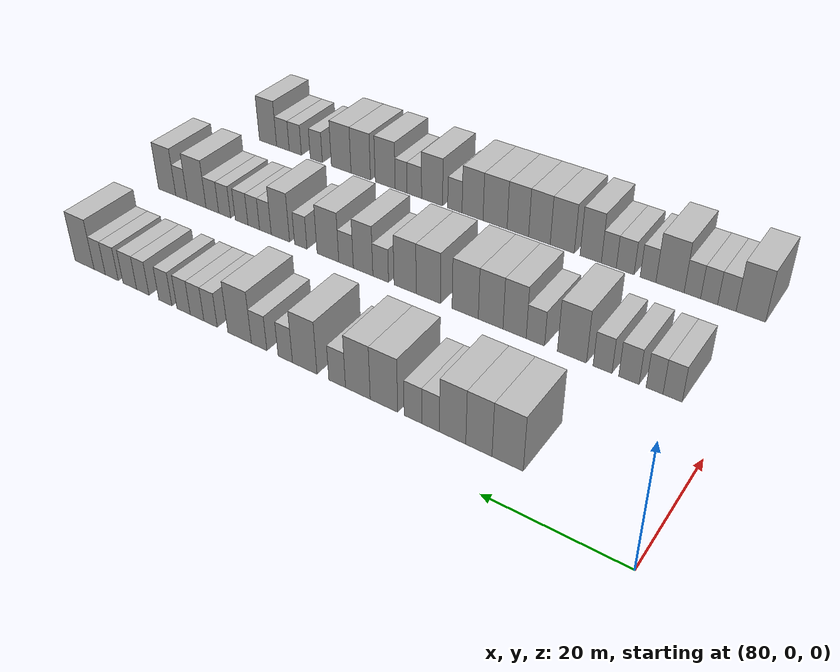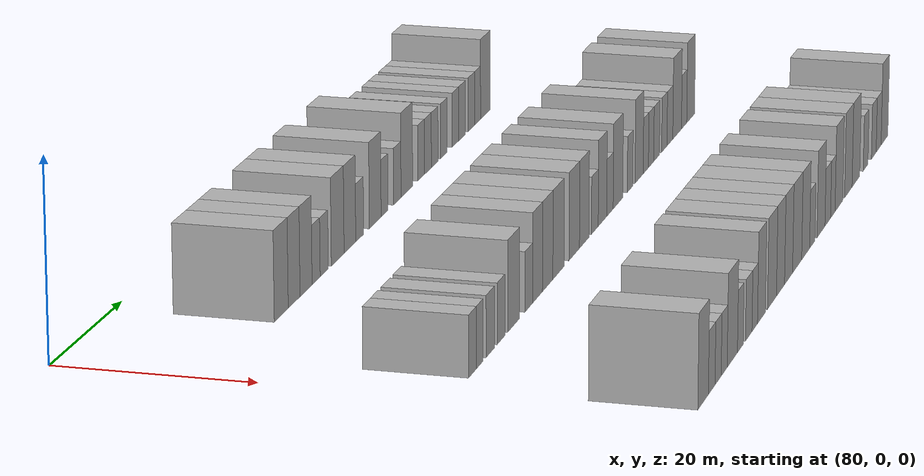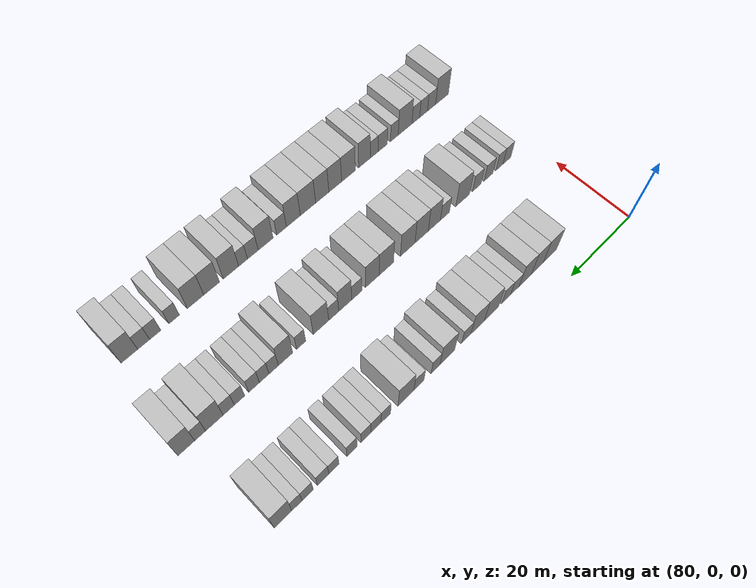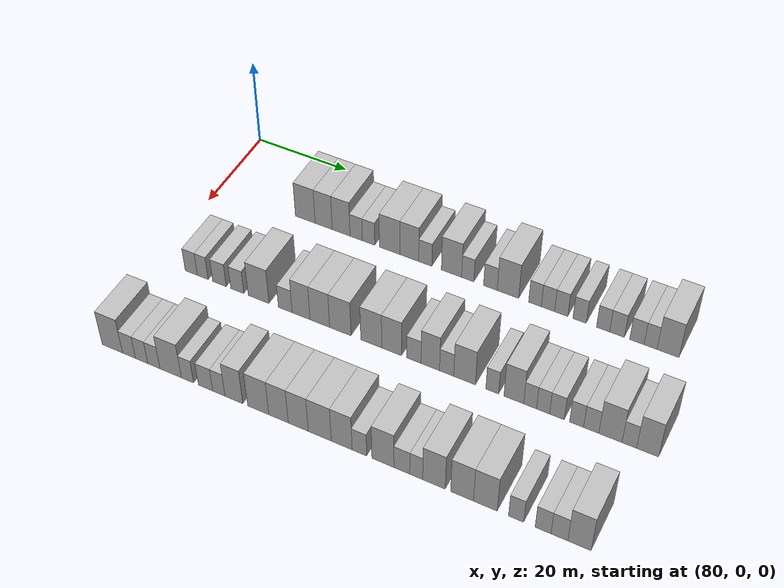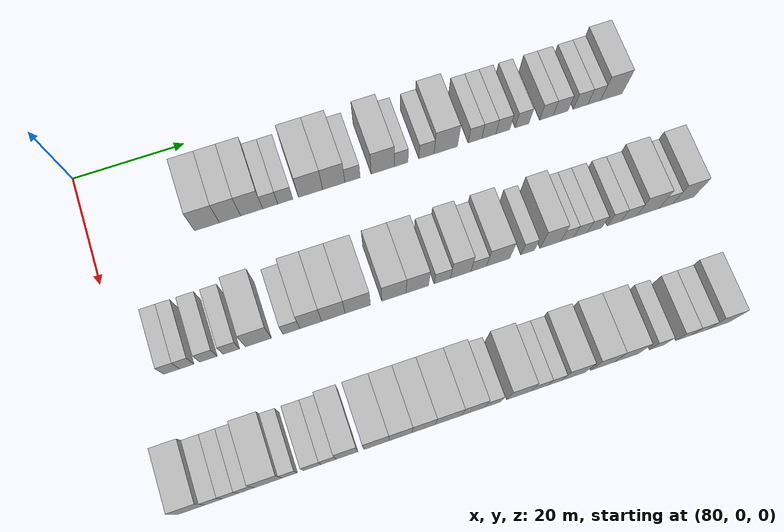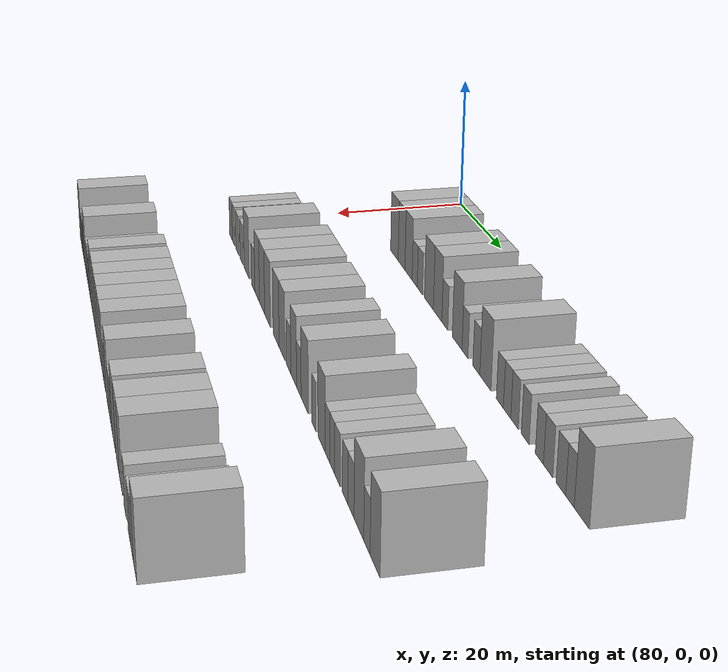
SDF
<sdf version="1.6">
 <world name="default">
  <model name="building_667">
   <static>1</static>
   <pose>91.0000 19.6866 0 0.000000 0.000000 0.000000</pose>
   <link name="link">
    <pose>0 0 4.50 0 0 0</pose>
    <collision name="collision"><geometry><box><size>10.0000 4.4033 9.0000</size></box></geometry></collision>
    <visual name="visual">
     <cast_shadows>0</cast_shadows>
     <geometry><box><size>10.0000 4.4033 9.0000</size></box></geometry>
     <material>
      <script>
       <uri>model://HANNAS_wall/materials/scripts</uri>
       <uri>model://HANNAS_wall/materials/textures</uri>
       <name>vrc/HANNAS_wall</name>
      </script>
     </material>
    </visual>
   </link>
  </model>
  <model name="building_668">
   <static>1</static>
   <pose>91.0000 23.7858 0 0.000000 0.000000 0.000000</pose>
   <link name="link">
    <pose>0 0 4.50 0 0 0</pose>
    <collision name="collision"><geometry><box><size>10.0000 3.7952 9.0000</size></box></geometry></collision>
    <visual name="visual">
     <cast_shadows>0</cast_shadows>
     <geometry><box><size>10.0000 3.7952 9.0000</size></box></geometry>
     <material>
      <script>
       <uri>model://HANNAS_wall/materials/scripts</uri>
       <uri>model://HANNAS_wall/materials/textures</uri>
       <name>vrc/HANNAS_wall</name>
      </script>
     </material>
    </visual>
   </link>
  </model>
  <model name="building_669">
   <static>1</static>
   <pose>91.0000 27.6432 0 0.000000 0.000000 0.000000</pose>
   <link name="link">
    <pose>0 0 4.50 0 0 0</pose>
    <collision name="collision"><geometry><box><size>10.0000 3.9196 9.0000</size></box></geometry></collision>
    <visual name="visual">
     <cast_shadows>0</cast_shadows>
     <geometry><box><size>10.0000 3.9196 9.0000</size></box></geometry>
     <material>
      <script>
       <uri>model://HANNAS_wall/materials/scripts</uri>
       <uri>model://HANNAS_wall/materials/textures</uri>
       <name>vrc/HANNAS_wall</name>
      </script>
     </material>
    </visual>
   </link>
  </model>
  <model name="building_670">
   <static>1</static>
   <pose>91.0000 30.9434 0 0.000000 0.000000 0.000000</pose>
   <link name="link">
    <pose>0 0 3.00 0 0 0</pose>
    <collision name="collision"><geometry><box><size>10.0000 2.6806 6.0000</size></box></geometry></collision>
    <visual name="visual">
     <cast_shadows>0</cast_shadows>
     <geometry><box><size>10.0000 2.6806 6.0000</size></box></geometry>
     <material>
      <script>
       <uri>model://HANNAS_wall/materials/scripts</uri>
       <uri>model://HANNAS_wall/materials/textures</uri>
       <name>vrc/HANNAS_wall</name>
      </script>
     </material>
    </visual>
   </link>
  </model>
  <model name="building_671">
   <static>1</static>
   <pose>91.0000 33.6394 0 0.000000 0.000000 0.000000</pose>
   <link name="link">
    <pose>0 0 3.00 0 0 0</pose>
    <collision name="collision"><geometry><box><size>10.0000 2.7114 6.0000</size></box></geometry></collision>
    <visual name="visual">
     <cast_shadows>0</cast_shadows>
     <geometry><box><size>10.0000 2.7114 6.0000</size></box></geometry>
     <material>
      <script>
       <uri>model://HANNAS_wall/materials/scripts</uri>
       <uri>model://HANNAS_wall/materials/textures</uri>
       <name>vrc/HANNAS_wall</name>
      </script>
     </material>
    </visual>
   </link>
  </model>
  <model name="building_672">
   <static>1</static>
   <pose>91.0000 38.1758 0 0.000000 0.000000 0.000000</pose>
   <link name="link">
    <pose>0 0 4.50 0 0 0</pose>
    <collision name="collision"><geometry><box><size>10.0000 4.3613 9.0000</size></box></geometry></collision>
    <visual name="visual">
     <cast_shadows>0</cast_shadows>
     <geometry><box><size>10.0000 4.3613 9.0000</size></box></geometry>
     <material>
      <script>
       <uri>model://HANNAS_wall/materials/scripts</uri>
       <uri>model://HANNAS_wall/materials/textures</uri>
       <name>vrc/HANNAS_wall</name>
      </script>
     </material>
    </visual>
   </link>
  </model>
  <model name="building_673">
   <static>1</static>
   <pose>91.0000 42.3746 0 0.000000 0.000000 0.000000</pose>
   <link name="link">
    <pose>0 0 4.50 0 0 0</pose>
    <collision name="collision"><geometry><box><size>10.0000 4.0362 9.0000</size></box></geometry></collision>
    <visual name="visual">
     <cast_shadows>0</cast_shadows>
     <geometry><box><size>10.0000 4.0362 9.0000</size></box></geometry>
     <material>
      <script>
       <uri>model://HANNAS_wall/materials/scripts</uri>
       <uri>model://HANNAS_wall/materials/textures</uri>
       <name>vrc/HANNAS_wall</name>
      </script>
     </material>
    </visual>
   </link>
  </model>
  <model name="building_674">
   <static>1</static>
   <pose>91.0000 45.7812 0 0.000000 0.000000 0.000000</pose>
   <link name="link">
    <pose>0 0 3.00 0 0 0</pose>
    <collision name="collision"><geometry><box><size>10.0000 2.7770 6.0000</size></box></geometry></collision>
    <visual name="visual">
     <cast_shadows>0</cast_shadows>
     <geometry><box><size>10.0000 2.7770 6.0000</size></box></geometry>
     <material>
      <script>
       <uri>model://HANNAS_wall/materials/scripts</uri>
       <uri>model://HANNAS_wall/materials/textures</uri>
       <name>vrc/HANNAS_wall</name>
      </script>
     </material>
    </visual>
   </link>
  </model>
  <model name="building_675">
   <static>1</static>
   <pose>91.0000 51.2825 0 0.000000 0.000000 0.000000</pose>
   <link name="link">
    <pose>0 0 4.50 0 0 0</pose>
    <collision name="collision"><geometry><box><size>10.0000 4.2257 9.0000</size></box></geometry></collision>
    <visual name="visual">
     <cast_shadows>0</cast_shadows>
     <geometry><box><size>10.0000 4.2257 9.0000</size></box></geometry>
     <material>
      <script>
       <uri>model://HANNAS_wall/materials/scripts</uri>
       <uri>model://HANNAS_wall/materials/textures</uri>
       <name>vrc/HANNAS_wall</name>
      </script>
     </material>
    </visual>
   </link>
  </model>
  <model name="building_676">
   <static>1</static>
   <pose>91.0000 54.6594 0 0.000000 0.000000 0.000000</pose>
   <link name="link">
    <pose>0 0 3.00 0 0 0</pose>
    <collision name="collision"><geometry><box><size>10.0000 2.5281 6.0000</size></box></geometry></collision>
    <visual name="visual">
     <cast_shadows>0</cast_shadows>
     <geometry><box><size>10.0000 2.5281 6.0000</size></box></geometry>
     <material>
      <script>
       <uri>model://HANNAS_wall/materials/scripts</uri>
       <uri>model://HANNAS_wall/materials/textures</uri>
       <name>vrc/HANNAS_wall</name>
      </script>
     </material>
    </visual>
   </link>
  </model>
  <model name="building_677">
   <static>1</static>
   <pose>91.0000 59.3194 0 0.000000 0.000000 0.000000</pose>
   <link name="link">
    <pose>0 0 3.00 0 0 0</pose>
    <collision name="collision"><geometry><box><size>10.0000 2.7919 6.0000</size></box></geometry></collision>
    <visual name="visual">
     <cast_shadows>0</cast_shadows>
     <geometry><box><size>10.0000 2.7919 6.0000</size></box></geometry>
     <material>
      <script>
       <uri>model://HANNAS_wall/materials/scripts</uri>
       <uri>model://HANNAS_wall/materials/textures</uri>
       <name>vrc/HANNAS_wall</name>
      </script>
     </material>
    </visual>
   </link>
  </model>
  <model name="building_678">
   <static>1</static>
   <pose>91.0000 62.8949 0 0.000000 0.000000 0.000000</pose>
   <link name="link">
    <pose>0 0 4.50 0 0 0</pose>
    <collision name="collision"><geometry><box><size>10.0000 4.3589 9.0000</size></box></geometry></collision>
    <visual name="visual">
     <cast_shadows>0</cast_shadows>
     <geometry><box><size>10.0000 4.3589 9.0000</size></box></geometry>
     <material>
      <script>
       <uri>model://HANNAS_wall/materials/scripts</uri>
       <uri>model://HANNAS_wall/materials/textures</uri>
       <name>vrc/HANNAS_wall</name>
      </script>
     </material>
    </visual>
   </link>
  </model>
  <model name="building_679">
   <static>1</static>
   <pose>91.0000 68.3487 0 0.000000 0.000000 0.000000</pose>
   <link name="link">
    <pose>0 0 3.00 0 0 0</pose>
    <collision name="collision"><geometry><box><size>10.0000 2.5487 6.0000</size></box></geometry></collision>
    <visual name="visual">
     <cast_shadows>0</cast_shadows>
     <geometry><box><size>10.0000 2.5487 6.0000</size></box></geometry>
     <material>
      <script>
       <uri>model://HANNAS_wall/materials/scripts</uri>
       <uri>model://HANNAS_wall/materials/textures</uri>
       <name>vrc/HANNAS_wall</name>
      </script>
     </material>
    </visual>
   </link>
  </model>
  <model name="building_680">
   <static>1</static>
   <pose>91.0000 70.9417 0 0.000000 0.000000 0.000000</pose>
   <link name="link">
    <pose>0 0 3.00 0 0 0</pose>
    <collision name="collision"><geometry><box><size>10.0000 2.6374 6.0000</size></box></geometry></collision>
    <visual name="visual">
     <cast_shadows>0</cast_shadows>
     <geometry><box><size>10.0000 2.6374 6.0000</size></box></geometry>
     <material>
      <script>
       <uri>model://HANNAS_wall/materials/scripts</uri>
       <uri>model://HANNAS_wall/materials/textures</uri>
       <name>vrc/HANNAS_wall</name>
      </script>
     </material>
    </visual>
   </link>
  </model>
  <model name="building_681">
   <static>1</static>
   <pose>91.0000 73.5672 0 0.000000 0.000000 0.000000</pose>
   <link name="link">
    <pose>0 0 3.00 0 0 0</pose>
    <collision name="collision"><geometry><box><size>10.0000 2.6137 6.0000</size></box></geometry></collision>
    <visual name="visual">
     <cast_shadows>0</cast_shadows>
     <geometry><box><size>10.0000 2.6137 6.0000</size></box></geometry>
     <material>
      <script>
       <uri>model://HANNAS_wall/materials/scripts</uri>
       <uri>model://HANNAS_wall/materials/textures</uri>
       <name>vrc/HANNAS_wall</name>
      </script>
     </material>
    </visual>
   </link>
  </model>
  <model name="building_682">
   <static>1</static>
   <pose>91.0000 77.1823 0 0.000000 0.000000 0.000000</pose>
   <link name="link">
    <pose>0 0 3.00 0 0 0</pose>
    <collision name="collision"><geometry><box><size>10.0000 2.6165 6.0000</size></box></geometry></collision>
    <visual name="visual">
     <cast_shadows>0</cast_shadows>
     <geometry><box><size>10.0000 2.6165 6.0000</size></box></geometry>
     <material>
      <script>
       <uri>model://HANNAS_wall/materials/scripts</uri>
       <uri>model://HANNAS_wall/materials/textures</uri>
       <name>vrc/HANNAS_wall</name>
      </script>
     </material>
    </visual>
   </link>
  </model>
  <model name="building_683">
   <static>1</static>
   <pose>91.0000 81.7672 0 0.000000 0.000000 0.000000</pose>
   <link name="link">
    <pose>0 0 3.00 0 0 0</pose>
    <collision name="collision"><geometry><box><size>10.0000 2.5532 6.0000</size></box></geometry></collision>
    <visual name="visual">
     <cast_shadows>0</cast_shadows>
     <geometry><box><size>10.0000 2.5532 6.0000</size></box></geometry>
     <material>
      <script>
       <uri>model://HANNAS_wall/materials/scripts</uri>
       <uri>model://HANNAS_wall/materials/textures</uri>
       <name>vrc/HANNAS_wall</name>
      </script>
     </material>
    </visual>
   </link>
  </model>
  <model name="building_684">
   <static>1</static>
   <pose>91.0000 84.4674 0 0.000000 0.000000 0.000000</pose>
   <link name="link">
    <pose>0 0 3.00 0 0 0</pose>
    <collision name="collision"><geometry><box><size>10.0000 2.8473 6.0000</size></box></geometry></collision>
    <visual name="visual">
     <cast_shadows>0</cast_shadows>
     <geometry><box><size>10.0000 2.8473 6.0000</size></box></geometry>
     <material>
      <script>
       <uri>model://HANNAS_wall/materials/scripts</uri>
       <uri>model://HANNAS_wall/materials/textures</uri>
       <name>vrc/HANNAS_wall</name>
      </script>
     </material>
    </visual>
   </link>
  </model>
  <model name="building_685">
   <static>1</static>
   <pose>91.0000 88.2764 0 0.000000 0.000000 0.000000</pose>
   <link name="link">
    <pose>0 0 3.00 0 0 0</pose>
    <collision name="collision"><geometry><box><size>10.0000 2.7707 6.0000</size></box></geometry></collision>
    <visual name="visual">
     <cast_shadows>0</cast_shadows>
     <geometry><box><size>10.0000 2.7707 6.0000</size></box></geometry>
     <material>
      <script>
       <uri>model://HANNAS_wall/materials/scripts</uri>
       <uri>model://HANNAS_wall/materials/textures</uri>
       <name>vrc/HANNAS_wall</name>
      </script>
     </material>
    </visual>
   </link>
  </model>
  <model name="building_686">
   <static>1</static>
   <pose>91.0000 90.8783 0 0.000000 0.000000 0.000000</pose>
   <link name="link">
    <pose>0 0 3.00 0 0 0</pose>
    <collision name="collision"><geometry><box><size>10.0000 2.4330 6.0000</size></box></geometry></collision>
    <visual name="visual">
     <cast_shadows>0</cast_shadows>
     <geometry><box><size>10.0000 2.4330 6.0000</size></box></geometry>
     <material>
      <script>
       <uri>model://HANNAS_wall/materials/scripts</uri>
       <uri>model://HANNAS_wall/materials/textures</uri>
       <name>vrc/HANNAS_wall</name>
      </script>
     </material>
    </visual>
   </link>
  </model>
  <model name="building_687">
   <static>1</static>
   <pose>91.0000 94.1745 0 0.000000 0.000000 0.000000</pose>
   <link name="link">
    <pose>0 0 4.50 0 0 0</pose>
    <collision name="collision"><geometry><box><size>10.0000 4.1594 9.0000</size></box></geometry></collision>
    <visual name="visual">
     <cast_shadows>0</cast_shadows>
     <geometry><box><size>10.0000 4.1594 9.0000</size></box></geometry>
     <material>
      <script>
       <uri>model://HANNAS_wall/materials/scripts</uri>
       <uri>model://HANNAS_wall/materials/textures</uri>
       <name>vrc/HANNAS_wall</name>
      </script>
     </material>
    </visual>
   </link>
  </model>
  <model name="building_853">
   <static>1</static>
   <pose>113.0000 7.5096 0 0.000000 0.000000 0.000000</pose>
   <link name="link">
    <pose>0 0 3.00 0 0 0</pose>
    <collision name="collision"><geometry><box><size>10.0000 2.6960 6.0000</size></box></geometry></collision>
    <visual name="visual">
     <cast_shadows>0</cast_shadows>
     <geometry><box><size>10.0000 2.6960 6.0000</size></box></geometry>
     <material>
      <script>
       <uri>model://HANNAS_wall/materials/scripts</uri>
       <uri>model://HANNAS_wall/materials/textures</uri>
       <name>vrc/HANNAS_wall</name>
      </script>
     </material>
    </visual>
   </link>
  </model>
  <model name="building_854">
   <static>1</static>
   <pose>113.0000 10.0584 0 0.000000 0.000000 0.000000</pose>
   <link name="link">
    <pose>0 0 3.00 0 0 0</pose>
    <collision name="collision"><geometry><box><size>10.0000 2.4015 6.0000</size></box></geometry></collision>
    <visual name="visual">
     <cast_shadows>0</cast_shadows>
     <geometry><box><size>10.0000 2.4015 6.0000</size></box></geometry>
     <material>
      <script>
       <uri>model://HANNAS_wall/materials/scripts</uri>
       <uri>model://HANNAS_wall/materials/textures</uri>
       <name>vrc/HANNAS_wall</name>
      </script>
     </material>
    </visual>
   </link>
  </model>
  <model name="building_855">
   <static>1</static>
   <pose>113.0000 13.7403 0 0.000000 0.000000 0.000000</pose>
   <link name="link">
    <pose>0 0 3.00 0 0 0</pose>
    <collision name="collision"><geometry><box><size>10.0000 2.9624 6.0000</size></box></geometry></collision>
    <visual name="visual">
     <cast_shadows>0</cast_shadows>
     <geometry><box><size>10.0000 2.9624 6.0000</size></box></geometry>
     <material>
      <script>
       <uri>model://HANNAS_wall/materials/scripts</uri>
       <uri>model://HANNAS_wall/materials/textures</uri>
       <name>vrc/HANNAS_wall</name>
      </script>
     </material>
    </visual>
   </link>
  </model>
  <model name="building_856">
   <static>1</static>
   <pose>113.0000 17.6283 0 0.000000 0.000000 0.000000</pose>
   <link name="link">
    <pose>0 0 3.00 0 0 0</pose>
    <collision name="collision"><geometry><box><size>10.0000 2.8135 6.0000</size></box></geometry></collision>
    <visual name="visual">
     <cast_shadows>0</cast_shadows>
     <geometry><box><size>10.0000 2.8135 6.0000</size></box></geometry>
     <material>
      <script>
       <uri>model://HANNAS_wall/materials/scripts</uri>
       <uri>model://HANNAS_wall/materials/textures</uri>
       <name>vrc/HANNAS_wall</name>
      </script>
     </material>
    </visual>
   </link>
  </model>
  <model name="building_857">
   <static>1</static>
   <pose>113.0000 22.2583 0 0.000000 0.000000 0.000000</pose>
   <link name="link">
    <pose>0 0 4.50 0 0 0</pose>
    <collision name="collision"><geometry><box><size>10.0000 4.4465 9.0000</size></box></geometry></collision>
    <visual name="visual">
     <cast_shadows>0</cast_shadows>
     <geometry><box><size>10.0000 4.4465 9.0000</size></box></geometry>
     <material>
      <script>
       <uri>model://HANNAS_wall/materials/scripts</uri>
       <uri>model://HANNAS_wall/materials/textures</uri>
       <name>vrc/HANNAS_wall</name>
      </script>
     </material>
    </visual>
   </link>
  </model>
  <model name="building_858">
   <static>1</static>
   <pose>113.0000 27.9430 0 0.000000 0.000000 0.000000</pose>
   <link name="link">
    <pose>0 0 3.00 0 0 0</pose>
    <collision name="collision"><geometry><box><size>10.0000 2.9228 6.0000</size></box></geometry></collision>
    <visual name="visual">
     <cast_shadows>0</cast_shadows>
     <geometry><box><size>10.0000 2.9228 6.0000</size></box></geometry>
     <material>
      <script>
       <uri>model://HANNAS_wall/materials/scripts</uri>
       <uri>model://HANNAS_wall/materials/textures</uri>
       <name>vrc/HANNAS_wall</name>
      </script>
     </material>
    </visual>
   </link>
  </model>
  <model name="building_859">
   <static>1</static>
   <pose>113.0000 31.2790 0 0.000000 0.000000 0.000000</pose>
   <link name="link">
    <pose>0 0 4.50 0 0 0</pose>
    <collision name="collision"><geometry><box><size>10.0000 3.7493 9.0000</size></box></geometry></collision>
    <visual name="visual">
     <cast_shadows>0</cast_shadows>
     <geometry><box><size>10.0000 3.7493 9.0000</size></box></geometry>
     <material>
      <script>
       <uri>model://HANNAS_wall/materials/scripts</uri>
       <uri>model://HANNAS_wall/materials/textures</uri>
       <name>vrc/HANNAS_wall</name>
      </script>
     </material>
    </visual>
   </link>
  </model>
  <model name="building_860">
   <static>1</static>
   <pose>113.0000 35.1930 0 0.000000 0.000000 0.000000</pose>
   <link name="link">
    <pose>0 0 4.50 0 0 0</pose>
    <collision name="collision"><geometry><box><size>10.0000 4.0786 9.0000</size></box></geometry></collision>
    <visual name="visual">
     <cast_shadows>0</cast_shadows>
     <geometry><box><size>10.0000 4.0786 9.0000</size></box></geometry>
     <material>
      <script>
       <uri>model://HANNAS_wall/materials/scripts</uri>
       <uri>model://HANNAS_wall/materials/textures</uri>
       <name>vrc/HANNAS_wall</name>
      </script>
     </material>
    </visual>
   </link>
  </model>
  <model name="building_861">
   <static>1</static>
   <pose>113.0000 39.4489 0 0.000000 0.000000 0.000000</pose>
   <link name="link">
    <pose>0 0 4.50 0 0 0</pose>
    <collision name="collision"><geometry><box><size>10.0000 4.4333 9.0000</size></box></geometry></collision>
    <visual name="visual">
     <cast_shadows>0</cast_shadows>
     <geometry><box><size>10.0000 4.4333 9.0000</size></box></geometry>
     <material>
      <script>
       <uri>model://HANNAS_wall/materials/scripts</uri>
       <uri>model://HANNAS_wall/materials/textures</uri>
       <name>vrc/HANNAS_wall</name>
      </script>
     </material>
    </visual>
   </link>
  </model>
  <model name="building_862">
   <static>1</static>
   <pose>113.0000 45.8019 0 0.000000 0.000000 0.000000</pose>
   <link name="link">
    <pose>0 0 4.50 0 0 0</pose>
    <collision name="collision"><geometry><box><size>10.0000 4.2726 9.0000</size></box></geometry></collision>
    <visual name="visual">
     <cast_shadows>0</cast_shadows>
     <geometry><box><size>10.0000 4.2726 9.0000</size></box></geometry>
     <material>
      <script>
       <uri>model://HANNAS_wall/materials/scripts</uri>
       <uri>model://HANNAS_wall/materials/textures</uri>
       <name>vrc/HANNAS_wall</name>
      </script>
     </material>
    </visual>
   </link>
  </model>
  <model name="building_863">
   <static>1</static>
   <pose>113.0000 49.9196 0 0.000000 0.000000 0.000000</pose>
   <link name="link">
    <pose>0 0 4.50 0 0 0</pose>
    <collision name="collision"><geometry><box><size>10.0000 3.9629 9.0000</size></box></geometry></collision>
    <visual name="visual">
     <cast_shadows>0</cast_shadows>
     <geometry><box><size>10.0000 3.9629 9.0000</size></box></geometry>
     <material>
      <script>
       <uri>model://HANNAS_wall/materials/scripts</uri>
       <uri>model://HANNAS_wall/materials/textures</uri>
       <name>vrc/HANNAS_wall</name>
      </script>
     </material>
    </visual>
   </link>
  </model>
  <model name="building_864">
   <static>1</static>
   <pose>113.0000 54.3443 0 0.000000 0.000000 0.000000</pose>
   <link name="link">
    <pose>0 0 3.00 0 0 0</pose>
    <collision name="collision"><geometry><box><size>10.0000 2.8865 6.0000</size></box></geometry></collision>
    <visual name="visual">
     <cast_shadows>0</cast_shadows>
     <geometry><box><size>10.0000 2.8865 6.0000</size></box></geometry>
     <material>
      <script>
       <uri>model://HANNAS_wall/materials/scripts</uri>
       <uri>model://HANNAS_wall/materials/textures</uri>
       <name>vrc/HANNAS_wall</name>
      </script>
     </material>
    </visual>
   </link>
  </model>
  <model name="building_865">
   <static>1</static>
   <pose>113.0000 57.6152 0 0.000000 0.000000 0.000000</pose>
   <link name="link">
    <pose>0 0 4.50 0 0 0</pose>
    <collision name="collision"><geometry><box><size>10.0000 3.6552 9.0000</size></box></geometry></collision>
    <visual name="visual">
     <cast_shadows>0</cast_shadows>
     <geometry><box><size>10.0000 3.6552 9.0000</size></box></geometry>
     <material>
      <script>
       <uri>model://HANNAS_wall/materials/scripts</uri>
       <uri>model://HANNAS_wall/materials/textures</uri>
       <name>vrc/HANNAS_wall</name>
      </script>
     </material>
    </visual>
   </link>
  </model>
  <model name="building_866">
   <static>1</static>
   <pose>113.0000 60.8302 0 0.000000 0.000000 0.000000</pose>
   <link name="link">
    <pose>0 0 3.00 0 0 0</pose>
    <collision name="collision"><geometry><box><size>10.0000 2.7748 6.0000</size></box></geometry></collision>
    <visual name="visual">
     <cast_shadows>0</cast_shadows>
     <geometry><box><size>10.0000 2.7748 6.0000</size></box></geometry>
     <material>
      <script>
       <uri>model://HANNAS_wall/materials/scripts</uri>
       <uri>model://HANNAS_wall/materials/textures</uri>
       <name>vrc/HANNAS_wall</name>
      </script>
     </material>
    </visual>
   </link>
  </model>
  <model name="building_867">
   <static>1</static>
   <pose>113.0000 64.3264 0 0.000000 0.000000 0.000000</pose>
   <link name="link">
    <pose>0 0 4.50 0 0 0</pose>
    <collision name="collision"><geometry><box><size>10.0000 4.2175 9.0000</size></box></geometry></collision>
    <visual name="visual">
     <cast_shadows>0</cast_shadows>
     <geometry><box><size>10.0000 4.2175 9.0000</size></box></geometry>
     <material>
      <script>
       <uri>model://HANNAS_wall/materials/scripts</uri>
       <uri>model://HANNAS_wall/materials/textures</uri>
       <name>vrc/HANNAS_wall</name>
      </script>
     </material>
    </visual>
   </link>
  </model>
  <model name="building_868">
   <static>1</static>
   <pose>113.0000 69.6706 0 0.000000 0.000000 0.000000</pose>
   <link name="link">
    <pose>0 0 3.00 0 0 0</pose>
    <collision name="collision"><geometry><box><size>10.0000 2.4710 6.0000</size></box></geometry></collision>
    <visual name="visual">
     <cast_shadows>0</cast_shadows>
     <geometry><box><size>10.0000 2.4710 6.0000</size></box></geometry>
     <material>
      <script>
       <uri>model://HANNAS_wall/materials/scripts</uri>
       <uri>model://HANNAS_wall/materials/textures</uri>
       <name>vrc/HANNAS_wall</name>
      </script>
     </material>
    </visual>
   </link>
  </model>
  <model name="building_869">
   <static>1</static>
   <pose>113.0000 73.7764 0 0.000000 0.000000 0.000000</pose>
   <link name="link">
    <pose>0 0 4.50 0 0 0</pose>
    <collision name="collision"><geometry><box><size>10.0000 3.7405 9.0000</size></box></geometry></collision>
    <visual name="visual">
     <cast_shadows>0</cast_shadows>
     <geometry><box><size>10.0000 3.7405 9.0000</size></box></geometry>
     <material>
      <script>
       <uri>model://HANNAS_wall/materials/scripts</uri>
       <uri>model://HANNAS_wall/materials/textures</uri>
       <name>vrc/HANNAS_wall</name>
      </script>
     </material>
    </visual>
   </link>
  </model>
  <model name="building_870">
   <static>1</static>
   <pose>113.0000 76.8587 0 0.000000 0.000000 0.000000</pose>
   <link name="link">
    <pose>0 0 3.00 0 0 0</pose>
    <collision name="collision"><geometry><box><size>10.0000 2.4240 6.0000</size></box></geometry></collision>
    <visual name="visual">
     <cast_shadows>0</cast_shadows>
     <geometry><box><size>10.0000 2.4240 6.0000</size></box></geometry>
     <material>
      <script>
       <uri>model://HANNAS_wall/materials/scripts</uri>
       <uri>model://HANNAS_wall/materials/textures</uri>
       <name>vrc/HANNAS_wall</name>
      </script>
     </material>
    </visual>
   </link>
  </model>
  <model name="building_871">
   <static>1</static>
   <pose>113.0000 79.2891 0 0.000000 0.000000 0.000000</pose>
   <link name="link">
    <pose>0 0 3.00 0 0 0</pose>
    <collision name="collision"><geometry><box><size>10.0000 2.4370 6.0000</size></box></geometry></collision>
    <visual name="visual">
     <cast_shadows>0</cast_shadows>
     <geometry><box><size>10.0000 2.4370 6.0000</size></box></geometry>
     <material>
      <script>
       <uri>model://HANNAS_wall/materials/scripts</uri>
       <uri>model://HANNAS_wall/materials/textures</uri>
       <name>vrc/HANNAS_wall</name>
      </script>
     </material>
    </visual>
   </link>
  </model>
  <model name="building_872">
   <static>1</static>
   <pose>113.0000 81.8611 0 0.000000 0.000000 0.000000</pose>
   <link name="link">
    <pose>0 0 3.00 0 0 0</pose>
    <collision name="collision"><geometry><box><size>10.0000 2.7070 6.0000</size></box></geometry></collision>
    <visual name="visual">
     <cast_shadows>0</cast_shadows>
     <geometry><box><size>10.0000 2.7070 6.0000</size></box></geometry>
     <material>
      <script>
       <uri>model://HANNAS_wall/materials/scripts</uri>
       <uri>model://HANNAS_wall/materials/textures</uri>
       <name>vrc/HANNAS_wall</name>
      </script>
     </material>
    </visual>
   </link>
  </model>
  <model name="building_873">
   <static>1</static>
   <pose>113.0000 85.5049 0 0.000000 0.000000 0.000000</pose>
   <link name="link">
    <pose>0 0 3.00 0 0 0</pose>
    <collision name="collision"><geometry><box><size>10.0000 2.5806 6.0000</size></box></geometry></collision>
    <visual name="visual">
     <cast_shadows>0</cast_shadows>
     <geometry><box><size>10.0000 2.5806 6.0000</size></box></geometry>
     <material>
      <script>
       <uri>model://HANNAS_wall/materials/scripts</uri>
       <uri>model://HANNAS_wall/materials/textures</uri>
       <name>vrc/HANNAS_wall</name>
      </script>
     </material>
    </visual>
   </link>
  </model>
  <model name="building_874">
   <static>1</static>
   <pose>113.0000 88.1871 0 0.000000 0.000000 0.000000</pose>
   <link name="link">
    <pose>0 0 3.00 0 0 0</pose>
    <collision name="collision"><geometry><box><size>10.0000 2.7837 6.0000</size></box></geometry></collision>
    <visual name="visual">
     <cast_shadows>0</cast_shadows>
     <geometry><box><size>10.0000 2.7837 6.0000</size></box></geometry>
     <material>
      <script>
       <uri>model://HANNAS_wall/materials/scripts</uri>
       <uri>model://HANNAS_wall/materials/textures</uri>
       <name>vrc/HANNAS_wall</name>
      </script>
     </material>
    </visual>
   </link>
  </model>
  <model name="building_875">
   <static>1</static>
   <pose>113.0000 91.6911 0 0.000000 0.000000 0.000000</pose>
   <link name="link">
    <pose>0 0 4.50 0 0 0</pose>
    <collision name="collision"><geometry><box><size>10.0000 4.2244 9.0000</size></box></geometry></collision>
    <visual name="visual">
     <cast_shadows>0</cast_shadows>
     <geometry><box><size>10.0000 4.2244 9.0000</size></box></geometry>
     <material>
      <script>
       <uri>model://HANNAS_wall/materials/scripts</uri>
       <uri>model://HANNAS_wall/materials/textures</uri>
       <name>vrc/HANNAS_wall</name>
      </script>
     </material>
    </visual>
   </link>
  </model>
  <model name="building_876">
   <static>1</static>
   <pose>113.0000 95.0994 0 0.000000 0.000000 0.000000</pose>
   <link name="link">
    <pose>0 0 3.00 0 0 0</pose>
    <collision name="collision"><geometry><box><size>10.0000 2.5923 6.0000</size></box></geometry></collision>
    <visual name="visual">
     <cast_shadows>0</cast_shadows>
     <geometry><box><size>10.0000 2.5923 6.0000</size></box></geometry>
     <material>
      <script>
       <uri>model://HANNAS_wall/materials/scripts</uri>
       <uri>model://HANNAS_wall/materials/textures</uri>
       <name>vrc/HANNAS_wall</name>
      </script>
     </material>
    </visual>
   </link>
  </model>
  <model name="building_877">
   <static>1</static>
   <pose>113.0000 98.3733 0 0.000000 0.000000 0.000000</pose>
   <link name="link">
    <pose>0 0 4.50 0 0 0</pose>
    <collision name="collision"><geometry><box><size>10.0000 3.9555 9.0000</size></box></geometry></collision>
    <visual name="visual">
     <cast_shadows>0</cast_shadows>
     <geometry><box><size>10.0000 3.9555 9.0000</size></box></geometry>
     <material>
      <script>
       <uri>model://HANNAS_wall/materials/scripts</uri>
       <uri>model://HANNAS_wall/materials/textures</uri>
       <name>vrc/HANNAS_wall</name>
      </script>
     </material>
    </visual>
   </link>
  </model>
  <model name="building_1045">
   <static>1</static>
   <pose>135.0000 4.9147 0 0.000000 0.000000 0.000000</pose>
   <link name="link">
    <pose>0 0 4.50 0 0 0</pose>
    <collision name="collision"><geometry><box><size>10.0000 4.3816 9.0000</size></box></geometry></collision>
    <visual name="visual">
     <cast_shadows>0</cast_shadows>
     <geometry><box><size>10.0000 4.3816 9.0000</size></box></geometry>
     <material>
      <script>
       <uri>model://HANNAS_wall/materials/scripts</uri>
       <uri>model://HANNAS_wall/materials/textures</uri>
       <name>vrc/HANNAS_wall</name>
      </script>
     </material>
    </visual>
   </link>
  </model>
  <model name="building_1046">
   <static>1</static>
   <pose>135.0000 8.4978 0 0.000000 0.000000 0.000000</pose>
   <link name="link">
    <pose>0 0 3.00 0 0 0</pose>
    <collision name="collision"><geometry><box><size>10.0000 2.7846 6.0000</size></box></geometry></collision>
    <visual name="visual">
     <cast_shadows>0</cast_shadows>
     <geometry><box><size>10.0000 2.7846 6.0000</size></box></geometry>
     <material>
      <script>
       <uri>model://HANNAS_wall/materials/scripts</uri>
       <uri>model://HANNAS_wall/materials/textures</uri>
       <name>vrc/HANNAS_wall</name>
      </script>
     </material>
    </visual>
   </link>
  </model>
  <model name="building_1047">
   <static>1</static>
   <pose>135.0000 11.1997 0 0.000000 0.000000 0.000000</pose>
   <link name="link">
    <pose>0 0 3.00 0 0 0</pose>
    <collision name="collision"><geometry><box><size>10.0000 2.6192 6.0000</size></box></geometry></collision>
    <visual name="visual">
     <cast_shadows>0</cast_shadows>
     <geometry><box><size>10.0000 2.6192 6.0000</size></box></geometry>
     <material>
      <script>
       <uri>model://HANNAS_wall/materials/scripts</uri>
       <uri>model://HANNAS_wall/materials/textures</uri>
       <name>vrc/HANNAS_wall</name>
      </script>
     </material>
    </visual>
   </link>
  </model>
  <model name="building_1048">
   <static>1</static>
   <pose>135.0000 13.7969 0 0.000000 0.000000 0.000000</pose>
   <link name="link">
    <pose>0 0 3.00 0 0 0</pose>
    <collision name="collision"><geometry><box><size>10.0000 2.5753 6.0000</size></box></geometry></collision>
    <visual name="visual">
     <cast_shadows>0</cast_shadows>
     <geometry><box><size>10.0000 2.5753 6.0000</size></box></geometry>
     <material>
      <script>
       <uri>model://HANNAS_wall/materials/scripts</uri>
       <uri>model://HANNAS_wall/materials/textures</uri>
       <name>vrc/HANNAS_wall</name>
      </script>
     </material>
    </visual>
   </link>
  </model>
  <model name="building_1049">
   <static>1</static>
   <pose>135.0000 17.3283 0 0.000000 0.000000 0.000000</pose>
   <link name="link">
    <pose>0 0 4.50 0 0 0</pose>
    <collision name="collision"><geometry><box><size>10.0000 4.4874 9.0000</size></box></geometry></collision>
    <visual name="visual">
     <cast_shadows>0</cast_shadows>
     <geometry><box><size>10.0000 4.4874 9.0000</size></box></geometry>
     <material>
      <script>
       <uri>model://HANNAS_wall/materials/scripts</uri>
       <uri>model://HANNAS_wall/materials/textures</uri>
       <name>vrc/HANNAS_wall</name>
      </script>
     </material>
    </visual>
   </link>
  </model>
  <model name="building_1050">
   <static>1</static>
   <pose>135.0000 20.8439 0 0.000000 0.000000 0.000000</pose>
   <link name="link">
    <pose>0 0 3.00 0 0 0</pose>
    <collision name="collision"><geometry><box><size>10.0000 2.5440 6.0000</size></box></geometry></collision>
    <visual name="visual">
     <cast_shadows>0</cast_shadows>
     <geometry><box><size>10.0000 2.5440 6.0000</size></box></geometry>
     <material>
      <script>
       <uri>model://HANNAS_wall/materials/scripts</uri>
       <uri>model://HANNAS_wall/materials/textures</uri>
       <name>vrc/HANNAS_wall</name>
      </script>
     </material>
    </visual>
   </link>
  </model>
  <model name="building_1051">
   <static>1</static>
   <pose>135.0000 24.5876 0 0.000000 0.000000 0.000000</pose>
   <link name="link">
    <pose>0 0 3.00 0 0 0</pose>
    <collision name="collision"><geometry><box><size>10.0000 2.9435 6.0000</size></box></geometry></collision>
    <visual name="visual">
     <cast_shadows>0</cast_shadows>
     <geometry><box><size>10.0000 2.9435 6.0000</size></box></geometry>
     <material>
      <script>
       <uri>model://HANNAS_wall/materials/scripts</uri>
       <uri>model://HANNAS_wall/materials/textures</uri>
       <name>vrc/HANNAS_wall</name>
      </script>
     </material>
    </visual>
   </link>
  </model>
  <model name="building_1052">
   <static>1</static>
   <pose>135.0000 27.3179 0 0.000000 0.000000 0.000000</pose>
   <link name="link">
    <pose>0 0 3.00 0 0 0</pose>
    <collision name="collision"><geometry><box><size>10.0000 2.5171 6.0000</size></box></geometry></collision>
    <visual name="visual">
     <cast_shadows>0</cast_shadows>
     <geometry><box><size>10.0000 2.5171 6.0000</size></box></geometry>
     <material>
      <script>
       <uri>model://HANNAS_wall/materials/scripts</uri>
       <uri>model://HANNAS_wall/materials/textures</uri>
       <name>vrc/HANNAS_wall</name>
      </script>
     </material>
    </visual>
   </link>
  </model>
  <model name="building_1053">
   <static>1</static>
   <pose>135.0000 30.3879 0 0.000000 0.000000 0.000000</pose>
   <link name="link">
    <pose>0 0 4.50 0 0 0</pose>
    <collision name="collision"><geometry><box><size>10.0000 3.6229 9.0000</size></box></geometry></collision>
    <visual name="visual">
     <cast_shadows>0</cast_shadows>
     <geometry><box><size>10.0000 3.6229 9.0000</size></box></geometry>
     <material>
      <script>
       <uri>model://HANNAS_wall/materials/scripts</uri>
       <uri>model://HANNAS_wall/materials/textures</uri>
       <name>vrc/HANNAS_wall</name>
      </script>
     </material>
    </visual>
   </link>
  </model>
  <model name="building_1054">
   <static>1</static>
   <pose>135.0000 35.3095 0 0.000000 0.000000 0.000000</pose>
   <link name="link">
    <pose>0 0 4.50 0 0 0</pose>
    <collision name="collision"><geometry><box><size>10.0000 4.2203 9.0000</size></box></geometry></collision>
    <visual name="visual">
     <cast_shadows>0</cast_shadows>
     <geometry><box><size>10.0000 4.2203 9.0000</size></box></geometry>
     <material>
      <script>
       <uri>model://HANNAS_wall/materials/scripts</uri>
       <uri>model://HANNAS_wall/materials/textures</uri>
       <name>vrc/HANNAS_wall</name>
      </script>
     </material>
    </visual>
   </link>
  </model>
  <model name="building_1055">
   <static>1</static>
   <pose>135.0000 39.3550 0 0.000000 0.000000 0.000000</pose>
   <link name="link">
    <pose>0 0 4.50 0 0 0</pose>
    <collision name="collision"><geometry><box><size>10.0000 3.8707 9.0000</size></box></geometry></collision>
    <visual name="visual">
     <cast_shadows>0</cast_shadows>
     <geometry><box><size>10.0000 3.8707 9.0000</size></box></geometry>
     <material>
      <script>
       <uri>model://HANNAS_wall/materials/scripts</uri>
       <uri>model://HANNAS_wall/materials/textures</uri>
       <name>vrc/HANNAS_wall</name>
      </script>
     </material>
    </visual>
   </link>
  </model>
  <model name="building_1056">
   <static>1</static>
   <pose>135.0000 43.2538 0 0.000000 0.000000 0.000000</pose>
   <link name="link">
    <pose>0 0 4.50 0 0 0</pose>
    <collision name="collision"><geometry><box><size>10.0000 3.9268 9.0000</size></box></geometry></collision>
    <visual name="visual">
     <cast_shadows>0</cast_shadows>
     <geometry><box><size>10.0000 3.9268 9.0000</size></box></geometry>
     <material>
      <script>
       <uri>model://HANNAS_wall/materials/scripts</uri>
       <uri>model://HANNAS_wall/materials/textures</uri>
       <name>vrc/HANNAS_wall</name>
      </script>
     </material>
    </visual>
   </link>
  </model>
  <model name="building_1057">
   <static>1</static>
   <pose>135.0000 47.4617 0 0.000000 0.000000 0.000000</pose>
   <link name="link">
    <pose>0 0 4.50 0 0 0</pose>
    <collision name="collision"><geometry><box><size>10.0000 4.4890 9.0000</size></box></geometry></collision>
    <visual name="visual">
     <cast_shadows>0</cast_shadows>
     <geometry><box><size>10.0000 4.4890 9.0000</size></box></geometry>
     <material>
      <script>
       <uri>model://HANNAS_wall/materials/scripts</uri>
       <uri>model://HANNAS_wall/materials/textures</uri>
       <name>vrc/HANNAS_wall</name>
      </script>
     </material>
    </visual>
   </link>
  </model>
  <model name="building_1058">
   <static>1</static>
   <pose>135.0000 51.7064 0 0.000000 0.000000 0.000000</pose>
   <link name="link">
    <pose>0 0 4.50 0 0 0</pose>
    <collision name="collision"><geometry><box><size>10.0000 4.0003 9.0000</size></box></geometry></collision>
    <visual name="visual">
     <cast_shadows>0</cast_shadows>
     <geometry><box><size>10.0000 4.0003 9.0000</size></box></geometry>
     <material>
      <script>
       <uri>model://HANNAS_wall/materials/scripts</uri>
       <uri>model://HANNAS_wall/materials/textures</uri>
       <name>vrc/HANNAS_wall</name>
      </script>
     </material>
    </visual>
   </link>
  </model>
  <model name="building_1059">
   <static>1</static>
   <pose>135.0000 55.0924 0 0.000000 0.000000 0.000000</pose>
   <link name="link">
    <pose>0 0 3.00 0 0 0</pose>
    <collision name="collision"><geometry><box><size>10.0000 2.7717 6.0000</size></box></geometry></collision>
    <visual name="visual">
     <cast_shadows>0</cast_shadows>
     <geometry><box><size>10.0000 2.7717 6.0000</size></box></geometry>
     <material>
      <script>
       <uri>model://HANNAS_wall/materials/scripts</uri>
       <uri>model://HANNAS_wall/materials/textures</uri>
       <name>vrc/HANNAS_wall</name>
      </script>
     </material>
    </visual>
   </link>
  </model>
  <model name="building_1060">
   <static>1</static>
   <pose>135.0000 59.5612 0 0.000000 0.000000 0.000000</pose>
   <link name="link">
    <pose>0 0 4.50 0 0 0</pose>
    <collision name="collision"><geometry><box><size>10.0000 4.1660 9.0000</size></box></geometry></collision>
    <visual name="visual">
     <cast_shadows>0</cast_shadows>
     <geometry><box><size>10.0000 4.1660 9.0000</size></box></geometry>
     <material>
      <script>
       <uri>model://HANNAS_wall/materials/scripts</uri>
       <uri>model://HANNAS_wall/materials/textures</uri>
       <name>vrc/HANNAS_wall</name>
      </script>
     </material>
    </visual>
   </link>
  </model>
  <model name="building_1061">
   <static>1</static>
   <pose>135.0000 63.1157 0 0.000000 0.000000 0.000000</pose>
   <link name="link">
    <pose>0 0 3.00 0 0 0</pose>
    <collision name="collision"><geometry><box><size>10.0000 2.9431 6.0000</size></box></geometry></collision>
    <visual name="visual">
     <cast_shadows>0</cast_shadows>
     <geometry><box><size>10.0000 2.9431 6.0000</size></box></geometry>
     <material>
      <script>
       <uri>model://HANNAS_wall/materials/scripts</uri>
       <uri>model://HANNAS_wall/materials/textures</uri>
       <name>vrc/HANNAS_wall</name>
      </script>
     </material>
    </visual>
   </link>
  </model>
  <model name="building_1062">
   <static>1</static>
   <pose>135.0000 65.7881 0 0.000000 0.000000 0.000000</pose>
   <link name="link">
    <pose>0 0 3.00 0 0 0</pose>
    <collision name="collision"><geometry><box><size>10.0000 2.4018 6.0000</size></box></geometry></collision>
    <visual name="visual">
     <cast_shadows>0</cast_shadows>
     <geometry><box><size>10.0000 2.4018 6.0000</size></box></geometry>
     <material>
      <script>
       <uri>model://HANNAS_wall/materials/scripts</uri>
       <uri>model://HANNAS_wall/materials/textures</uri>
       <name>vrc/HANNAS_wall</name>
      </script>
     </material>
    </visual>
   </link>
  </model>
  <model name="building_1063">
   <static>1</static>
   <pose>135.0000 69.0611 0 0.000000 0.000000 0.000000</pose>
   <link name="link">
    <pose>0 0 4.50 0 0 0</pose>
    <collision name="collision"><geometry><box><size>10.0000 4.1441 9.0000</size></box></geometry></collision>
    <visual name="visual">
     <cast_shadows>0</cast_shadows>
     <geometry><box><size>10.0000 4.1441 9.0000</size></box></geometry>
     <material>
      <script>
       <uri>model://HANNAS_wall/materials/scripts</uri>
       <uri>model://HANNAS_wall/materials/textures</uri>
       <name>vrc/HANNAS_wall</name>
      </script>
     </material>
    </visual>
   </link>
  </model>
  <model name="building_1064">
   <static>1</static>
   <pose>135.0000 74.2034 0 0.000000 0.000000 0.000000</pose>
   <link name="link">
    <pose>0 0 4.50 0 0 0</pose>
    <collision name="collision"><geometry><box><size>10.0000 4.1404 9.0000</size></box></geometry></collision>
    <visual name="visual">
     <cast_shadows>0</cast_shadows>
     <geometry><box><size>10.0000 4.1404 9.0000</size></box></geometry>
     <material>
      <script>
       <uri>model://HANNAS_wall/materials/scripts</uri>
       <uri>model://HANNAS_wall/materials/textures</uri>
       <name>vrc/HANNAS_wall</name>
      </script>
     </material>
    </visual>
   </link>
  </model>
  <model name="building_1065">
   <static>1</static>
   <pose>135.0000 78.4081 0 0.000000 0.000000 0.000000</pose>
   <link name="link">
    <pose>0 0 4.50 0 0 0</pose>
    <collision name="collision"><geometry><box><size>10.0000 4.2690 9.0000</size></box></geometry></collision>
    <visual name="visual">
     <cast_shadows>0</cast_shadows>
     <geometry><box><size>10.0000 4.2690 9.0000</size></box></geometry>
     <material>
      <script>
       <uri>model://HANNAS_wall/materials/scripts</uri>
       <uri>model://HANNAS_wall/materials/textures</uri>
       <name>vrc/HANNAS_wall</name>
      </script>
     </material>
    </visual>
   </link>
  </model>
  <model name="building_1066">
   <static>1</static>
   <pose>135.0000 83.8847 0 0.000000 0.000000 0.000000</pose>
   <link name="link">
    <pose>0 0 3.00 0 0 0</pose>
    <collision name="collision"><geometry><box><size>10.0000 2.6843 6.0000</size></box></geometry></collision>
    <visual name="visual">
     <cast_shadows>0</cast_shadows>
     <geometry><box><size>10.0000 2.6843 6.0000</size></box></geometry>
     <material>
      <script>
       <uri>model://HANNAS_wall/materials/scripts</uri>
       <uri>model://HANNAS_wall/materials/textures</uri>
       <name>vrc/HANNAS_wall</name>
      </script>
     </material>
    </visual>
   </link>
  </model>
  <model name="building_1067">
   <static>1</static>
   <pose>135.0000 88.6143 0 0.000000 0.000000 0.000000</pose>
   <link name="link">
    <pose>0 0 3.00 0 0 0</pose>
    <collision name="collision"><geometry><box><size>10.0000 2.7749 6.0000</size></box></geometry></collision>
    <visual name="visual">
     <cast_shadows>0</cast_shadows>
     <geometry><box><size>10.0000 2.7749 6.0000</size></box></geometry>
     <material>
      <script>
       <uri>model://HANNAS_wall/materials/scripts</uri>
       <uri>model://HANNAS_wall/materials/textures</uri>
       <name>vrc/HANNAS_wall</name>
      </script>
     </material>
    </visual>
   </link>
  </model>
  <model name="building_1068">
   <static>1</static>
   <pose>135.0000 91.4560 0 0.000000 0.000000 0.000000</pose>
   <link name="link">
    <pose>0 0 3.00 0 0 0</pose>
    <collision name="collision"><geometry><box><size>10.0000 2.9085 6.0000</size></box></geometry></collision>
    <visual name="visual">
     <cast_shadows>0</cast_shadows>
     <geometry><box><size>10.0000 2.9085 6.0000</size></box></geometry>
     <material>
      <script>
       <uri>model://HANNAS_wall/materials/scripts</uri>
       <uri>model://HANNAS_wall/materials/textures</uri>
       <name>vrc/HANNAS_wall</name>
      </script>
     </material>
    </visual>
   </link>
  </model>
  <model name="building_1069">
   <static>1</static>
   <pose>135.0000 94.9157 0 0.000000 0.000000 0.000000</pose>
   <link name="link">
    <pose>0 0 4.50 0 0 0</pose>
    <collision name="collision"><geometry><box><size>10.0000 4.0109 9.0000</size></box></geometry></collision>
    <visual name="visual">
     <cast_shadows>0</cast_shadows>
     <geometry><box><size>10.0000 4.0109 9.0000</size></box></geometry>
     <material>
      <script>
       <uri>model://HANNAS_wall/materials/scripts</uri>
       <uri>model://HANNAS_wall/materials/textures</uri>
       <name>vrc/HANNAS_wall</name>
      </script>
     </material>
    </visual>
   </link>
  </model>
 </world>
</sdf>
